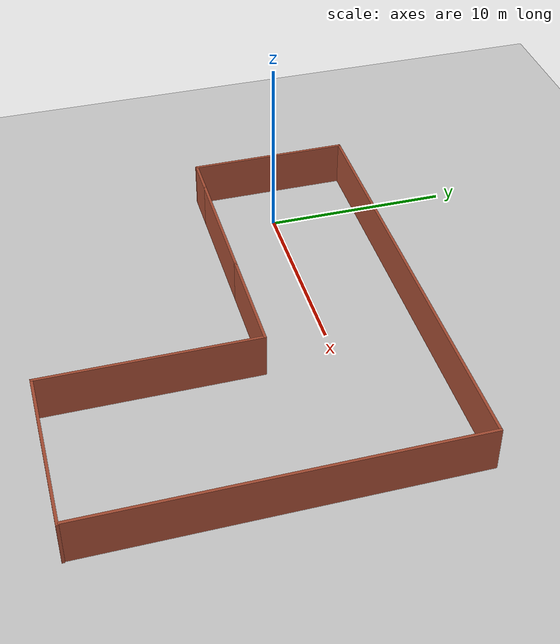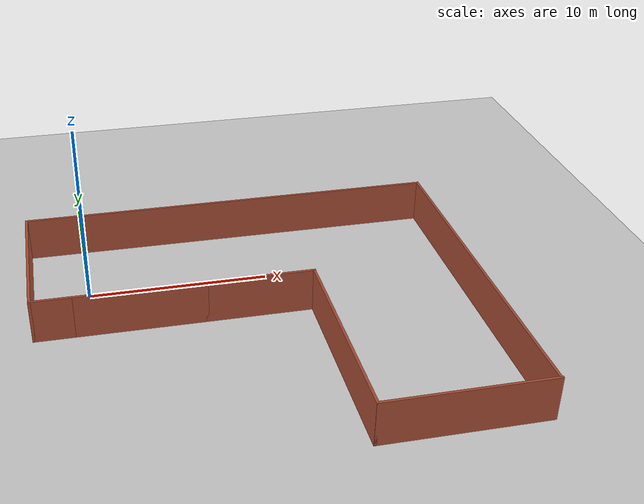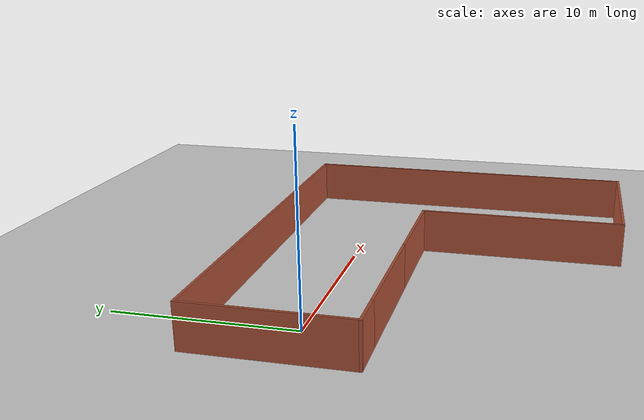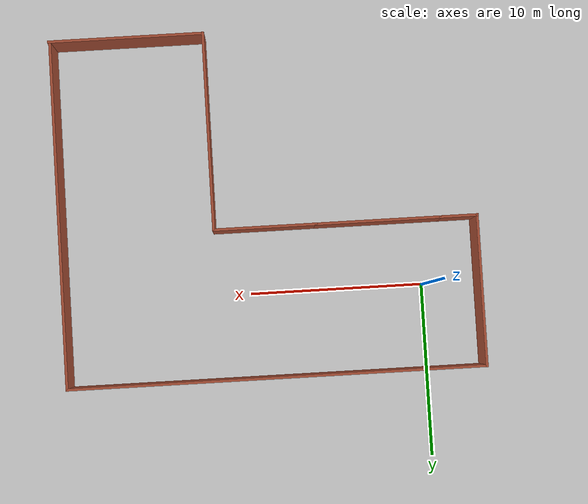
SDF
<sdf version="1.7">
 <world name="default">
  <light name="sun" type="directional">
   <pose>0 0 10 0 -0 0</pose>
   <diffuse>0.8 0.8 0.8 1</diffuse>
   <specular>0.2 0.2 0.2 1</specular>
   <attenuation>
    <range>1000</range>
    <constant>0.9</constant>
    <linear>0.01</linear>
    <quadratic>0.001</quadratic>
   </attenuation>
   <direction>-0.5 0.1 -0.9</direction>
   <spot><inner_angle>0</inner_angle><outer_angle>0</outer_angle><falloff>0</falloff></spot>
  </light>
  <model name="ground_plane">
   <static>1</static>
   <link name="link">
    <collision name="collision">
     <geometry><plane><normal>0 0 1</normal><size>100 100</size></plane></geometry>
     <surface><friction><ode><mu>100</mu><mu2>50</mu2></ode></friction></surface>
    </collision>
    <visual name="visual">
     <cast_shadows>0</cast_shadows>
     <geometry><plane><normal>0 0 1</normal><size>100 100</size></plane></geometry>
     <material>
      <script><uri>file://media/materials/scripts/gazebo.material</uri><name>Gazebo/Grey</name></script>
     </material>
    </visual>
   </link>
  </model>
  <gravity>0 0 -9.8</gravity>
  <magnetic_field>6e-06 2.3e-05 -4.2e-05</magnetic_field>
  <atmosphere type="adiabatic"/>
  <physics type="ode">
   <max_step_size>0.001</max_step_size>
   <real_time_factor>1</real_time_factor>
   <real_time_update_rate>1000</real_time_update_rate>
  </physics>
  <scene><ambient>0.4 0.4 0.4 1</ambient><background>0.7 0.7 0.7 1</background><shadows>1</shadows></scene>
  <spherical_coordinates>
   <surface_model>EARTH_WGS84</surface_model>
   <latitude_deg>0</latitude_deg>
   <longitude_deg>0</longitude_deg>
   <elevation>0</elevation>
   <heading_deg>0</heading_deg>
  </spherical_coordinates>
  <model name="直角">
   <pose>8.81 -5.095 0 0 -0 0</pose>
   <link name="Wall_10">
    <collision name="Wall_10_Collision">
     <geometry><box><size>20 0.15 2.5</size></box></geometry>
     <pose>0 0 1.25 0 -0 0</pose>
    </collision>
    <visual name="Wall_10_Visual">
     <pose>0 0 1.25 0 -0 0</pose>
     <geometry><box><size>20 0.15 2.5</size></box></geometry>
     <material>
      <script><uri>file://media/materials/scripts/gazebo.material</uri><name>Gazebo/Bricks</name></script>
      <ambient>1 1 1 1</ambient>
     </material>
     <meta><layer>0</layer></meta>
    </visual>
    <pose>11.9 0.05 0 0 -0 -1.5708</pose>
   </link>
   <link name="Wall_12">
    <collision name="Wall_12_Collision">
     <geometry><box><size>11.5 0.15 2.5</size></box></geometry>
     <pose>0 0 1.25 0 -0 0</pose>
    </collision>
    <visual name="Wall_12_Visual">
     <pose>0 0 1.25 0 -0 0</pose>
     <geometry><box><size>11.5 0.15 2.5</size></box></geometry>
     <material>
      <script><uri>file://media/materials/scripts/gazebo.material</uri><name>Gazebo/Bricks</name></script>
      <ambient>1 1 1 1</ambient>
     </material>
     <meta><layer>0</layer></meta>
    </visual>
    <pose>3.1 -4.3 0 0 -0 -1.5708</pose>
   </link>
   <link name="Wall_13">
    <collision name="Wall_13_Collision">
     <geometry><box><size>9 0.15 2.5</size></box></geometry>
     <pose>0 0 1.25 0 -0 0</pose>
    </collision>
    <visual name="Wall_13_Visual">
     <pose>0 0 1.25 0 -0 0</pose>
     <geometry><box><size>9 0.15 2.5</size></box></geometry>
     <material>
      <script><uri>file://media/materials/scripts/gazebo.material</uri><name>Gazebo/Bricks</name></script>
      <ambient>1 1 1 1</ambient>
     </material>
     <meta><layer>0</layer></meta>
    </visual>
    <pose>7.525 -9.975 0 0 -0 0</pose>
   </link>
   <link name="Wall_2">
    <collision name="Wall_2_Collision">
     <geometry><box><size>7.25 0.15 2.5</size></box></geometry>
     <pose>0 0 1.25 0 -0 0</pose>
    </collision>
    <visual name="Wall_2_Visual">
     <pose>0 0 1.25 0 -0 0</pose>
     <geometry><box><size>7.25 0.15 2.5</size></box></geometry>
     <material>
      <script><uri>file://media/materials/scripts/gazebo.material</uri><name>Gazebo/Bricks</name></script>
      <ambient>1 1 1 1</ambient>
     </material>
     <meta><layer>0</layer></meta>
    </visual>
    <pose>-6.3 1.375 0 0 -0 0</pose>
   </link>
   <link name="Wall_4">
    <collision name="Wall_4_Collision">
     <geometry><box><size>6 0.15 2.5</size></box></geometry>
     <pose>0 0 1.25 0 -0 0</pose>
    </collision>
    <visual name="Wall_4_Visual">
     <pose>0 0 1.25 0 -0 0</pose>
     <geometry><box><size>6 0.15 2.5</size></box></geometry>
     <material>
      <script><uri>file://media/materials/scripts/gazebo.material</uri><name>Gazebo/Bricks</name></script>
      <ambient>1 1 1 1</ambient>
     </material>
     <meta><layer>0</layer></meta>
    </visual>
    <pose>0.175 1.375 0 0 -0 0</pose>
   </link>
   <link name="Wall_7">
    <collision name="Wall_7_Collision">
     <geometry><box><size>2.25 0.15 2.5</size></box></geometry>
     <pose>0 0 1.25 0 -0 0</pose>
    </collision>
    <visual name="Wall_7_Visual">
     <pose>0 0 1.25 0 -0 0</pose>
     <geometry><box><size>2.25 0.15 2.5</size></box></geometry>
     <material>
      <script><uri>file://media/materials/scripts/gazebo.material</uri><name>Gazebo/Bricks</name></script>
      <ambient>1 1 1 1</ambient>
     </material>
     <meta><layer>0</layer></meta>
    </visual>
    <pose>-10.9 1.375 0 0 -0 3.14159</pose>
   </link>
   <link name="Wall_8">
    <collision name="Wall_8_Collision">
     <geometry><box><size>8.75 0.15 2.5</size></box></geometry>
     <pose>0 0 1.25 0 -0 0</pose>
    </collision>
    <visual name="Wall_8_Visual">
     <pose>0 0 1.25 0 -0 0</pose>
     <geometry><box><size>8.75 0.15 2.5</size></box></geometry>
     <material>
      <script><uri>file://media/materials/scripts/gazebo.material</uri><name>Gazebo/Bricks</name></script>
      <ambient>1 1 1 1</ambient>
     </material>
     <meta><layer>0</layer></meta>
    </visual>
    <pose>-11.95 5.675 0 0 -0 1.5708</pose>
   </link>
   <link name="Wall_9">
    <collision name="Wall_9_Collision">
     <geometry><box><size>24 0.15 2.5</size></box></geometry>
     <pose>0 0 1.25 0 -0 0</pose>
    </collision>
    <visual name="Wall_9_Visual">
     <pose>0 0 1.25 0 -0 0</pose>
     <geometry><box><size>24 0.15 2.5</size></box></geometry>
     <material>
      <script><uri>file://media/materials/scripts/gazebo.material</uri><name>Gazebo/Bricks</name></script>
      <ambient>1 1 1 1</ambient>
     </material>
     <meta><layer>0</layer></meta>
    </visual>
    <pose>-0.024999 9.975 0 0 -0 0</pose>
   </link>
   <static>1</static>
  </model>
 </world>
</sdf>
